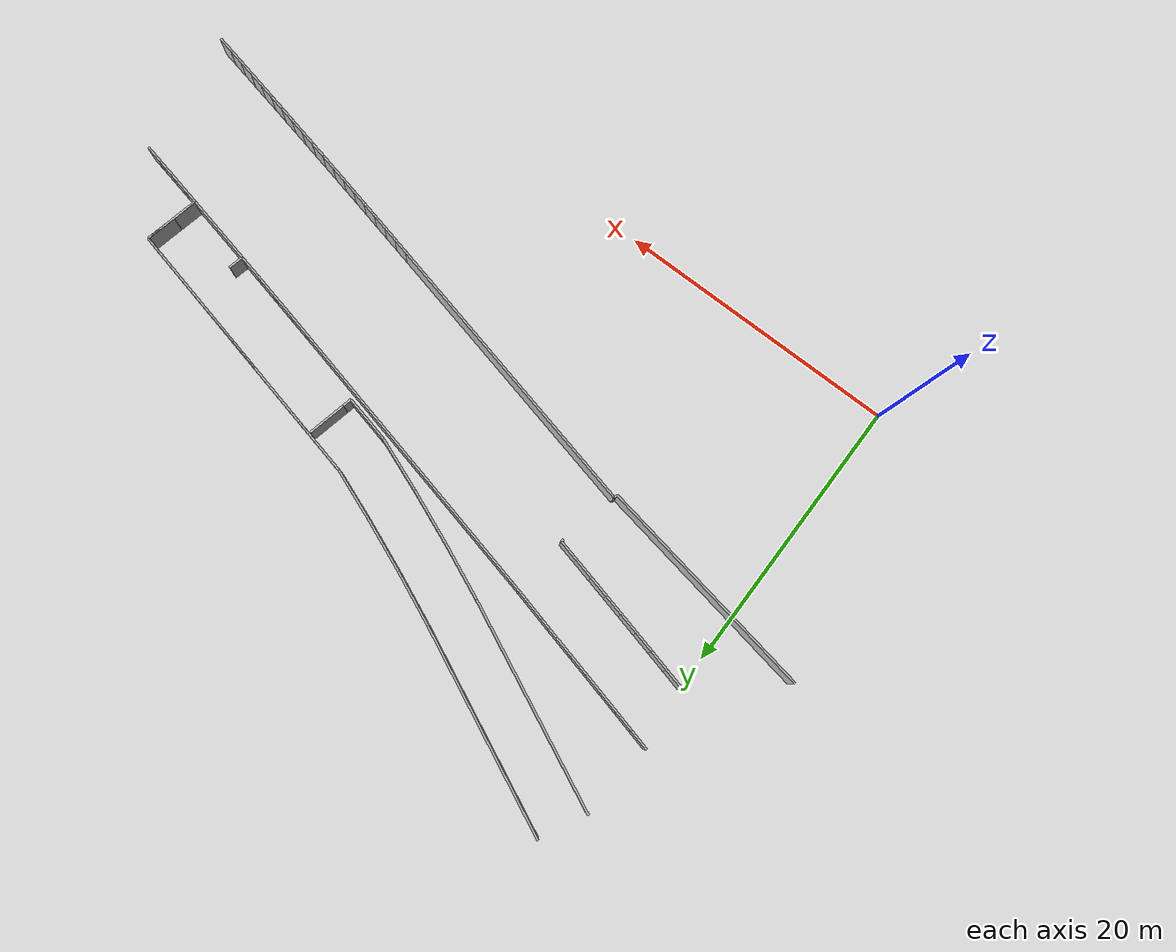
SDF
<?xml version="1.0" ?>
<sdf version="1.6">
  <model name="sps_1804">
    <pose frame="">0 0 0 0 -0 0</pose>
    <static>1</static>
    <self_collide>0</self_collide>
    <allow_auto_disable>0</allow_auto_disable>
    <link name="Wall28">
      <kinematic>0</kinematic>
      <gravity>1</gravity>
      <self_collide>0</self_collide>
      <collision name="collision">
        <geometry>
          <box>
            <size>15.0816 0.15 2.5</size>
          </box>
        </geometry>
        <pose frame="">0 0 0 0 -0 0</pose>
      </collision>
      <visual name="visual">
        <geometry>
          <box>
            <size>15.0816 0.15 2.5</size>
          </box>
        </geometry>
        <pose frame="">0 0 0 0 -0 0</pose>
        <cast_shadows>1</cast_shadows>
        <transparency>0.0</transparency>
      </visual>
      <pose frame="">7.05285 29.0338 1.25 0 -0 2.70048</pose>
    </link>
    <link name="Wall29">
      <kinematic>0</kinematic>
      <gravity>1</gravity>
      <self_collide>0</self_collide>
      <collision name="collision">
        <geometry>
          <box>
            <size>4.01389 0.15 2.5</size>
          </box>
        </geometry>
        <pose frame="">0 0 0 0 -0 0</pose>
      </collision>
      <visual name="visual">
        <geometry>
          <box>
            <size>4.01389 0.15 2.5</size>
          </box>
        </geometry>
        <pose frame="">0 0 0 0 -0 0</pose>
        <cast_shadows>1</cast_shadows>
        <transparency>0.0</transparency>
      </visual>
      <pose frame="">19.4061 23.41 1.25 0 -0 2.74713</pose>
    </link>
    <link name="Wall31">
      <kinematic>0</kinematic>
      <gravity>1</gravity>
      <self_collide>0</self_collide>
      <collision name="collision">
        <geometry>
          <box>
            <size>21.1297 0.15 2.5</size>
          </box>
        </geometry>
        <pose frame="">0 0 0 0 -0 0</pose>
      </collision>
      <visual name="visual">
        <geometry>
          <box>
            <size>21.1297 0.15 2.5</size>
          </box>
        </geometry>
        <pose frame="">0 0 0 0 -0 0</pose>
        <cast_shadows>1</cast_shadows>
        <transparency>0.0</transparency>
      </visual>
      <pose frame="">23.0045 21.1647 1.25 0 0 -0.231213</pose>
    </link>
    <link name="Wall118">
      <kinematic>0</kinematic>
      <gravity>1</gravity>
      <self_collide>0</self_collide>
      <collision name="collision">
        <geometry>
          <box>
            <size>16.258 0.15 2.5</size>
          </box>
        </geometry>
        <pose frame="">0 0 0 0 -0 0</pose>
      </collision>
      <visual name="visual">
        <geometry>
          <box>
            <size>16.258 0.15 2.5</size>
          </box>
        </geometry>
        <pose frame="">0 0 0 0 -0 0</pose>
        <cast_shadows>1</cast_shadows>
        <transparency>0.0</transparency>
      </visual>
      <pose frame="">2.6691 16.4683 1.25 0 0 -0.176184</pose>
    </link>
    <link name="Wall196">
      <kinematic>0</kinematic>
      <gravity>1</gravity>
      <self_collide>0</self_collide>
      <collision name="collision">
        <geometry>
          <box>
            <size>3.94369 0.15 2.5</size>
          </box>
        </geometry>
        <pose frame="">0 0 0 0 -0 0</pose>
      </collision>
      <visual name="visual">
        <geometry>
          <box>
            <size>3.94369 0.15 2.5</size>
          </box>
        </geometry>
        <pose frame="">0 0 0 0 -0 0</pose>
        <cast_shadows>1</cast_shadows>
        <transparency>0.0</transparency>
      </visual>
      <pose frame="">17.1317 28.1964 1.25 0 0 -0.417479</pose>
    </link>
    <link name="Wall197">
      <kinematic>0</kinematic>
      <gravity>1</gravity>
      <self_collide>0</self_collide>
      <collision name="collision">
        <geometry>
          <box>
            <size>21.1844 0.15 2.5</size>
          </box>
        </geometry>
        <pose frame="">0 0 0 0 -0 0</pose>
      </collision>
      <visual name="visual">
        <geometry>
          <box>
            <size>21.1844 0.15 2.5</size>
          </box>
        </geometry>
        <pose frame="">0 0 0 0 -0 0</pose>
        <cast_shadows>1</cast_shadows>
        <transparency>0.0</transparency>
      </visual>
      <pose frame="">21.0443 12.8755 1.25 0 0 -0.229613</pose>
    </link>
    <link name="Wall287">
      <kinematic>0</kinematic>
      <gravity>1</gravity>
      <self_collide>0</self_collide>
      <collision name="collision">
        <geometry>
          <box>
            <size>3.93435 0.15 2.5</size>
          </box>
        </geometry>
        <pose frame="">0 0 0 0 -0 0</pose>
      </collision>
      <visual name="visual">
        <geometry>
          <box>
            <size>3.93435 0.15 2.5</size>
          </box>
        </geometry>
        <pose frame="">0 0 0 0 -0 0</pose>
        <cast_shadows>1</cast_shadows>
        <transparency>0.0</transparency>
      </visual>
      <pose frame="">20.7505 26.6414 1.25 0 0 -0.394179</pose>
    </link>
    <link name="Wall290">
      <kinematic>0</kinematic>
      <gravity>1</gravity>
      <self_collide>0</self_collide>
      <collision name="collision">
        <geometry>
          <box>
            <size>5.6374 0.15 2.5</size>
          </box>
        </geometry>
        <pose frame="">0 0 0 0 -0 0</pose>
      </collision>
      <visual name="visual">
        <geometry>
          <box>
            <size>5.6374 0.15 2.5</size>
          </box>
        </geometry>
        <pose frame="">0 0 0 0 -0 0</pose>
        <cast_shadows>1</cast_shadows>
        <transparency>0.0</transparency>
      </visual>
      <pose frame="">31.7244 23.2149 1.25 0 0 -0.229042</pose>
    </link>
    <link name="Wall291">
      <kinematic>0</kinematic>
      <gravity>1</gravity>
      <self_collide>0</self_collide>
      <collision name="collision">
        <geometry>
          <box>
            <size>11.3628 0.15 2.5</size>
          </box>
        </geometry>
        <pose frame="">0 0 0 0 -0 0</pose>
      </collision>
      <visual name="visual">
        <geometry>
          <box>
            <size>11.3628 0.15 2.5</size>
          </box>
        </geometry>
        <pose frame="">0 0 0 0 -0 0</pose>
        <cast_shadows>1</cast_shadows>
        <transparency>0.0</transparency>
      </visual>
      <pose frame="">40.0025 21.285 1.25 0 0 -0.229042</pose>
    </link>
    <link name="Wall354">
      <kinematic>0</kinematic>
      <gravity>1</gravity>
      <self_collide>0</self_collide>
      <collision name="collision">
        <geometry>
          <box>
            <size>4.02733 0.15 2.5</size>
          </box>
        </geometry>
        <pose frame="">0 0 0 0 -0 0</pose>
      </collision>
      <visual name="visual">
        <geometry>
          <box>
            <size>4.02733 0.15 2.5</size>
          </box>
        </geometry>
        <pose frame="">0 0 0 0 -0 0</pose>
        <cast_shadows>1</cast_shadows>
        <transparency>0.0</transparency>
      </visual>
      <pose frame="">15.7125 24.9978 1.25 0 -0 2.72409</pose>
    </link>
    <link name="Wall355">
      <kinematic>0</kinematic>
      <gravity>1</gravity>
      <self_collide>0</self_collide>
      <collision name="collision">
        <geometry>
          <box>
            <size>3.95796 0.15 2.5</size>
          </box>
        </geometry>
        <pose frame="">0 0 0 0 -0 0</pose>
      </collision>
      <visual name="visual">
        <geometry>
          <box>
            <size>3.95796 0.15 2.5</size>
          </box>
        </geometry>
        <pose frame="">0 0 0 0 -0 0</pose>
        <cast_shadows>1</cast_shadows>
        <transparency>0.0</transparency>
      </visual>
      <pose frame="">23.1028 21.9201 1.25 0 -0 2.76998</pose>
    </link>
    <link name="Wall357">
      <kinematic>0</kinematic>
      <gravity>1</gravity>
      <self_collide>0</self_collide>
      <collision name="collision">
        <geometry>
          <box>
            <size>3.07591 0.15 2.5</size>
          </box>
        </geometry>
        <pose frame="">0 0 0 0 -0 0</pose>
      </collision>
      <visual name="visual">
        <geometry>
          <box>
            <size>3.07591 0.15 2.5</size>
          </box>
        </geometry>
        <pose frame="">0 0 0 0 -0 0</pose>
        <cast_shadows>1</cast_shadows>
        <transparency>0.0</transparency>
      </visual>
      <pose frame="">27.4815 24.204 1.25 0 0 -0.229</pose>
    </link>
    <link name="Wall435">
      <kinematic>0</kinematic>
      <gravity>1</gravity>
      <self_collide>0</self_collide>
      <collision name="collision">
        <geometry>
          <box>
            <size>0.179735 0.15 2.5</size>
          </box>
        </geometry>
        <pose frame="">0 0 0 0 -0 0</pose>
      </collision>
      <visual name="visual">
        <geometry>
          <box>
            <size>0.179735 0.15 2.5</size>
          </box>
        </geometry>
        <pose frame="">0 0 0 0 -0 0</pose>
        <cast_shadows>1</cast_shadows>
        <transparency>0.0</transparency>
      </visual>
      <pose frame="">11.743 19.5065 1.25 0 -0 1.33603</pose>
    </link>
    <link name="Wall532">
      <kinematic>0</kinematic>
      <gravity>1</gravity>
      <self_collide>0</self_collide>
      <collision name="collision">
        <geometry>
          <box>
            <size>0.249583 0.15 2.5</size>
          </box>
        </geometry>
        <pose frame="">0 0 0 0 -0 0</pose>
      </collision>
      <visual name="visual">
        <geometry>
          <box>
            <size>0.249583 0.15 2.5</size>
          </box>
        </geometry>
        <pose frame="">0 0 0 0 -0 0</pose>
        <cast_shadows>1</cast_shadows>
        <transparency>0.0</transparency>
      </visual>
      <pose frame="">10.7012 15.1649 1.25 0 -0 1.33709</pose>
    </link>
    <link name="Wall533">
      <kinematic>0</kinematic>
      <gravity>1</gravity>
      <self_collide>0</self_collide>
      <collision name="collision">
        <geometry>
          <box>
            <size>14.9395 0.15 2.5</size>
          </box>
        </geometry>
        <pose frame="">0 0 0 0 -0 0</pose>
      </collision>
      <visual name="visual">
        <geometry>
          <box>
            <size>14.9395 0.15 2.5</size>
          </box>
        </geometry>
        <pose frame="">0 0 0 0 -0 0</pose>
        <cast_shadows>1</cast_shadows>
        <transparency>0.0</transparency>
      </visual>
      <pose frame="">8.57455 32.1851 1.25 0 0 -0.441118</pose>
    </link>
    <link name="Wall534">
      <kinematic>0</kinematic>
      <gravity>1</gravity>
      <self_collide>0</self_collide>
      <collision name="collision">
        <geometry>
          <box>
            <size>3.66754 0.15 2.5</size>
          </box>
        </geometry>
        <pose frame="">0 0 0 0 -0 0</pose>
      </collision>
      <visual name="visual">
        <geometry>
          <box>
            <size>3.66754 0.15 2.5</size>
          </box>
        </geometry>
        <pose frame="">0 0 0 0 -0 0</pose>
        <cast_shadows>1</cast_shadows>
        <transparency>0.0</transparency>
      </visual>
      <pose frame="">24.2753 25.2195 1.25 0 0 -0.371909</pose>
    </link>
    <link name="Wall535">
      <kinematic>0</kinematic>
      <gravity>1</gravity>
      <self_collide>0</self_collide>
      <collision name="collision">
        <geometry>
          <box>
            <size>3.32587 0.15 2.5</size>
          </box>
        </geometry>
        <pose frame="">0 0 0 0 -0 0</pose>
      </collision>
      <visual name="visual">
        <geometry>
          <box>
            <size>3.32587 0.15 2.5</size>
          </box>
        </geometry>
        <pose frame="">0 0 0 0 -0 0</pose>
        <cast_shadows>1</cast_shadows>
        <transparency>0.0</transparency>
      </visual>
      <pose frame="">26.5662 20.8238 1.25 0 -0 2.91247</pose>
    </link>
    <link name="Wall536">
      <kinematic>0</kinematic>
      <gravity>1</gravity>
      <self_collide>0</self_collide>
      <collision name="collision">
        <geometry>
          <box>
            <size>0.61782 0.15 2.5</size>
          </box>
        </geometry>
        <pose frame="">0 0 0 0 -0 0</pose>
      </collision>
      <visual name="visual">
        <geometry>
          <box>
            <size>0.61782 0.15 2.5</size>
          </box>
        </geometry>
        <pose frame="">0 0 0 0 -0 0</pose>
        <cast_shadows>1</cast_shadows>
        <transparency>0.0</transparency>
      </visual>
      <pose frame="">28.2556 20.747 1.25 0 0 -1.79941</pose>
    </link>
    <link name="Wall537">
      <kinematic>0</kinematic>
      <gravity>1</gravity>
      <self_collide>0</self_collide>
      <collision name="collision">
        <geometry>
          <box>
            <size>2.15842 0.15 2.5</size>
          </box>
        </geometry>
        <pose frame="">0 0 0 0 -0 0</pose>
      </collision>
      <visual name="visual">
        <geometry>
          <box>
            <size>2.15842 0.15 2.5</size>
          </box>
        </geometry>
        <pose frame="">0 0 0 0 -0 0</pose>
        <cast_shadows>1</cast_shadows>
        <transparency>0.0</transparency>
      </visual>
      <pose frame="">45.2903 18.9441 1.25 0 0 -1.79996</pose>
    </link>
    <link name="Wall538">
      <kinematic>0</kinematic>
      <gravity>1</gravity>
      <self_collide>0</self_collide>
      <collision name="collision">
        <geometry>
          <box>
            <size>1.77993 0.15 2.5</size>
          </box>
        </geometry>
        <pose frame="">0 0 0 0 -0 0</pose>
      </collision>
      <visual name="visual">
        <geometry>
          <box>
            <size>1.77993 0.15 2.5</size>
          </box>
        </geometry>
        <pose frame="">0 0 0 0 -0 0</pose>
        <cast_shadows>1</cast_shadows>
        <transparency>0.0</transparency>
      </visual>
      <pose frame="">44.843 17.0264 1.25 0 0 -1.79996</pose>
    </link>
    <link name="Wall987">
      <kinematic>0</kinematic>
      <gravity>1</gravity>
      <self_collide>0</self_collide>
      <collision name="collision">
        <geometry>
          <box>
            <size>0.249583 0.15 2.5</size>
          </box>
        </geometry>
        <pose frame="">0 0 0 0 -0 0</pose>
      </collision>
      <visual name="visual">
        <geometry>
          <box>
            <size>0.249583 0.15 2.5</size>
          </box>
        </geometry>
        <pose frame="">0 0 0 0 -0 0</pose>
        <cast_shadows>1</cast_shadows>
        <transparency>0.0</transparency>
      </visual>
      <pose frame="">10.7012 15.1649 1.25 0 0 -1.80451</pose>
    </link>
    <link name="Wall999">
      <kinematic>0</kinematic>
      <gravity>1</gravity>
      <self_collide>0</self_collide>
      <collision name="collision">
        <geometry>
          <box>
            <size>2.8821 0.15 2.5</size>
          </box>
        </geometry>
        <pose frame="">0 0 0 0 -0 0</pose>
      </collision>
      <visual name="visual">
        <geometry>
          <box>
            <size>2.8821 0.15 2.5</size>
          </box>
        </geometry>
        <pose frame="">0 0 0 0 -0 0</pose>
        <cast_shadows>1</cast_shadows>
        <transparency>0.0</transparency>
      </visual>
      <pose frame="">28.6525 22.4514 1.25 0 -0 1.34202</pose>
    </link>
    <link name="Wall1000">
      <kinematic>0</kinematic>
      <gravity>1</gravity>
      <self_collide>0</self_collide>
      <collision name="collision">
        <geometry>
          <box>
            <size>17.0002 0.15 2.5</size>
          </box>
        </geometry>
        <pose frame="">0 0 0 0 -0 0</pose>
      </collision>
      <visual name="visual">
        <geometry>
          <box>
            <size>17.0002 0.15 2.5</size>
          </box>
        </geometry>
        <pose frame="">0 0 0 0 -0 0</pose>
        <cast_shadows>1</cast_shadows>
        <transparency>0.0</transparency>
      </visual>
      <pose frame="">37.2574 21.925 1.25 0 0 -0.229042</pose>
    </link>
    <link name="Wall1001">
      <kinematic>0</kinematic>
      <gravity>1</gravity>
      <self_collide>0</self_collide>
      <collision name="collision">
        <geometry>
          <box>
            <size>3.93835 0.15 2.5</size>
          </box>
        </geometry>
        <pose frame="">0 0 0 0 -0 0</pose>
      </collision>
      <visual name="visual">
        <geometry>
          <box>
            <size>3.93835 0.15 2.5</size>
          </box>
        </geometry>
        <pose frame="">0 0 0 0 -0 0</pose>
        <cast_shadows>1</cast_shadows>
        <transparency>0.0</transparency>
      </visual>
      <pose frame="">45.0882 18.0774 1.25 0 0 -1.79996</pose>
    </link>
    <link name="Wall1002">
      <kinematic>0</kinematic>
      <gravity>1</gravity>
      <self_collide>0</self_collide>
      <collision name="collision">
        <geometry>
          <box>
            <size>4.99972 0.15 2.5</size>
          </box>
        </geometry>
        <pose frame="">0 0 0 0 -0 0</pose>
      </collision>
      <visual name="visual">
        <geometry>
          <box>
            <size>4.99972 0.15 2.5</size>
          </box>
        </geometry>
        <pose frame="">0 0 0 0 -0 0</pose>
        <cast_shadows>1</cast_shadows>
        <transparency>0.0</transparency>
      </visual>
      <pose frame="">42.2015 16.7066 1.25 0 -0 2.92103</pose>
    </link>
    <link name="Wall1003">
      <kinematic>0</kinematic>
      <gravity>1</gravity>
      <self_collide>0</self_collide>
      <collision name="collision">
        <geometry>
          <box>
            <size>1.08065 0.15 2.5</size>
          </box>
        </geometry>
        <pose frame="">0 0 0 0 -0 0</pose>
      </collision>
      <visual name="visual">
        <geometry>
          <box>
            <size>1.08065 0.15 2.5</size>
          </box>
        </geometry>
        <pose frame="">0 0 0 0 -0 0</pose>
        <cast_shadows>1</cast_shadows>
        <transparency>0.0</transparency>
      </visual>
      <pose frame="">39.8854 17.7796 1.25 0 -0 1.34076</pose>
    </link>
    <link name="Wall2697">
      <kinematic>0</kinematic>
      <gravity>1</gravity>
      <self_collide>0</self_collide>
      <collision name="collision">
        <geometry>
          <box>
            <size>1.08602 0.15 2.5</size>
          </box>
        </geometry>
        <pose frame="">0 0 0 0 -0 0</pose>
      </collision>
      <visual name="visual">
        <geometry>
          <box>
            <size>1.08602 0.15 2.5</size>
          </box>
        </geometry>
        <pose frame="">0 0 0 0 -0 0</pose>
        <cast_shadows>1</cast_shadows>
        <transparency>0.0</transparency>
      </visual>
      <pose frame="">31.8873 10.3412 1.25 0 0 -0.229453</pose>
    </link>
    <link name="Wall2698">
      <kinematic>0</kinematic>
      <gravity>1</gravity>
      <self_collide>0</self_collide>
      <collision name="collision">
        <geometry>
          <box>
            <size>1.08593 0.15 2.5</size>
          </box>
        </geometry>
        <pose frame="">0 0 0 0 -0 0</pose>
      </collision>
      <visual name="visual">
        <geometry>
          <box>
            <size>1.08593 0.15 2.5</size>
          </box>
        </geometry>
        <pose frame="">0 0 0 0 -0 0</pose>
        <cast_shadows>1</cast_shadows>
        <transparency>0.0</transparency>
      </visual>
      <pose frame="">32.9449 10.0949 1.25 0 0 -0.228088</pose>
    </link>
    <link name="Wall2699">
      <kinematic>0</kinematic>
      <gravity>1</gravity>
      <self_collide>0</self_collide>
      <collision name="collision">
        <geometry>
          <box>
            <size>1.08609 0.15 2.5</size>
          </box>
        </geometry>
        <pose frame="">0 0 0 0 -0 0</pose>
      </collision>
      <visual name="visual">
        <geometry>
          <box>
            <size>1.08609 0.15 2.5</size>
          </box>
        </geometry>
        <pose frame="">0 0 0 0 -0 0</pose>
        <cast_shadows>1</cast_shadows>
        <transparency>0.0</transparency>
      </visual>
      <pose frame="">34.003 9.8499 1.25 0 0 -0.227014</pose>
    </link>
    <link name="Wall2700">
      <kinematic>0</kinematic>
      <gravity>1</gravity>
      <self_collide>0</self_collide>
      <collision name="collision">
        <geometry>
          <box>
            <size>1.08604 0.15 2.5</size>
          </box>
        </geometry>
        <pose frame="">0 0 0 0 -0 0</pose>
      </collision>
      <visual name="visual">
        <geometry>
          <box>
            <size>1.08604 0.15 2.5</size>
          </box>
        </geometry>
        <pose frame="">0 0 0 0 -0 0</pose>
        <cast_shadows>1</cast_shadows>
        <transparency>0.0</transparency>
      </visual>
      <pose frame="">35.0613 9.60597 1.25 0 0 -0.226045</pose>
    </link>
    <link name="Wall2701">
      <kinematic>0</kinematic>
      <gravity>1</gravity>
      <self_collide>0</self_collide>
      <collision name="collision">
        <geometry>
          <box>
            <size>1.08608 0.15 2.5</size>
          </box>
        </geometry>
        <pose frame="">0 0 0 0 -0 0</pose>
      </collision>
      <visual name="visual">
        <geometry>
          <box>
            <size>1.08608 0.15 2.5</size>
          </box>
        </geometry>
        <pose frame="">0 0 0 0 -0 0</pose>
        <cast_shadows>1</cast_shadows>
        <transparency>0.0</transparency>
      </visual>
      <pose frame="">36.1199 9.36326 1.25 0 0 -0.22471</pose>
    </link>
    <link name="Wall2702">
      <kinematic>0</kinematic>
      <gravity>1</gravity>
      <self_collide>0</self_collide>
      <collision name="collision">
        <geometry>
          <box>
            <size>1.08605 0.15 2.5</size>
          </box>
        </geometry>
        <pose frame="">0 0 0 0 -0 0</pose>
      </collision>
      <visual name="visual">
        <geometry>
          <box>
            <size>1.08605 0.15 2.5</size>
          </box>
        </geometry>
        <pose frame="">0 0 0 0 -0 0</pose>
        <cast_shadows>1</cast_shadows>
        <transparency>0.0</transparency>
      </visual>
      <pose frame="">37.1788 9.12187 1.25 0 0 -0.223564</pose>
    </link>
    <link name="Wall2703">
      <kinematic>0</kinematic>
      <gravity>1</gravity>
      <self_collide>0</self_collide>
      <collision name="collision">
        <geometry>
          <box>
            <size>1.08596 0.15 2.5</size>
          </box>
        </geometry>
        <pose frame="">0 0 0 0 -0 0</pose>
      </collision>
      <visual name="visual">
        <geometry>
          <box>
            <size>1.08596 0.15 2.5</size>
          </box>
        </geometry>
        <pose frame="">0 0 0 0 -0 0</pose>
        <cast_shadows>1</cast_shadows>
        <transparency>0.0</transparency>
      </visual>
      <pose frame="">38.2379 8.8817 1.25 0 0 -0.22243</pose>
    </link>
    <link name="Wall2704">
      <kinematic>0</kinematic>
      <gravity>1</gravity>
      <self_collide>0</self_collide>
      <collision name="collision">
        <geometry>
          <box>
            <size>1.08606 0.15 2.5</size>
          </box>
        </geometry>
        <pose frame="">0 0 0 0 -0 0</pose>
      </collision>
      <visual name="visual">
        <geometry>
          <box>
            <size>1.08606 0.15 2.5</size>
          </box>
        </geometry>
        <pose frame="">0 0 0 0 -0 0</pose>
        <cast_shadows>1</cast_shadows>
        <transparency>0.0</transparency>
      </visual>
      <pose frame="">39.2973 8.64271 1.25 0 0 -0.221314</pose>
    </link>
    <link name="Wall2705">
      <kinematic>0</kinematic>
      <gravity>1</gravity>
      <self_collide>0</self_collide>
      <collision name="collision">
        <geometry>
          <box>
            <size>1.08604 0.15 2.5</size>
          </box>
        </geometry>
        <pose frame="">0 0 0 0 -0 0</pose>
      </collision>
      <visual name="visual">
        <geometry>
          <box>
            <size>1.08604 0.15 2.5</size>
          </box>
        </geometry>
        <pose frame="">0 0 0 0 -0 0</pose>
        <cast_shadows>1</cast_shadows>
        <transparency>0.0</transparency>
      </visual>
      <pose frame="">40.357 8.40489 1.25 0 0 -0.220223</pose>
    </link>
    <link name="Wall2706">
      <kinematic>0</kinematic>
      <gravity>1</gravity>
      <self_collide>0</self_collide>
      <collision name="collision">
        <geometry>
          <box>
            <size>1.08594 0.15 2.5</size>
          </box>
        </geometry>
        <pose frame="">0 0 0 0 -0 0</pose>
      </collision>
      <visual name="visual">
        <geometry>
          <box>
            <size>1.08594 0.15 2.5</size>
          </box>
        </geometry>
        <pose frame="">0 0 0 0 -0 0</pose>
        <cast_shadows>1</cast_shadows>
        <transparency>0.0</transparency>
      </visual>
      <pose frame="">41.4169 8.16829 1.25 0 0 -0.219035</pose>
    </link>
    <link name="Wall2707">
      <kinematic>0</kinematic>
      <gravity>1</gravity>
      <self_collide>0</self_collide>
      <collision name="collision">
        <geometry>
          <box>
            <size>1.08587 0.15 2.5</size>
          </box>
        </geometry>
        <pose frame="">0 0 0 0 -0 0</pose>
      </collision>
      <visual name="visual">
        <geometry>
          <box>
            <size>1.08587 0.15 2.5</size>
          </box>
        </geometry>
        <pose frame="">0 0 0 0 -0 0</pose>
        <cast_shadows>1</cast_shadows>
        <transparency>0.0</transparency>
      </visual>
      <pose frame="">42.477 7.93291 1.25 0 0 -0.217956</pose>
    </link>
    <link name="Wall2708">
      <kinematic>0</kinematic>
      <gravity>1</gravity>
      <self_collide>0</self_collide>
      <collision name="collision">
        <geometry>
          <box>
            <size>1.08622 0.15 2.5</size>
          </box>
        </geometry>
        <pose frame="">0 0 0 0 -0 0</pose>
      </collision>
      <visual name="visual">
        <geometry>
          <box>
            <size>1.08622 0.15 2.5</size>
          </box>
        </geometry>
        <pose frame="">0 0 0 0 -0 0</pose>
        <cast_shadows>1</cast_shadows>
        <transparency>0.0</transparency>
      </visual>
      <pose frame="">43.5374 7.69868 1.25 0 0 -0.216792</pose>
    </link>
    <link name="Wall2709">
      <kinematic>0</kinematic>
      <gravity>1</gravity>
      <self_collide>0</self_collide>
      <collision name="collision">
        <geometry>
          <box>
            <size>1.086 0.15 2.5</size>
          </box>
        </geometry>
        <pose frame="">0 0 0 0 -0 0</pose>
      </collision>
      <visual name="visual">
        <geometry>
          <box>
            <size>1.086 0.15 2.5</size>
          </box>
        </geometry>
        <pose frame="">0 0 0 0 -0 0</pose>
        <cast_shadows>1</cast_shadows>
        <transparency>0.0</transparency>
      </visual>
      <pose frame="">44.5983 7.46568 1.25 0 0 -0.215627</pose>
    </link>
    <link name="Wall2710">
      <kinematic>0</kinematic>
      <gravity>1</gravity>
      <self_collide>0</self_collide>
      <collision name="collision">
        <geometry>
          <box>
            <size>1.08601 0.15 2.5</size>
          </box>
        </geometry>
        <pose frame="">0 0 0 0 -0 0</pose>
      </collision>
      <visual name="visual">
        <geometry>
          <box>
            <size>1.08601 0.15 2.5</size>
          </box>
        </geometry>
        <pose frame="">0 0 0 0 -0 0</pose>
        <cast_shadows>1</cast_shadows>
        <transparency>0.0</transparency>
      </visual>
      <pose frame="">45.6593 7.23399 1.25 0 0 -0.214359</pose>
    </link>
    <link name="Wall2711">
      <kinematic>0</kinematic>
      <gravity>1</gravity>
      <self_collide>0</self_collide>
      <collision name="collision">
        <geometry>
          <box>
            <size>1.08603 0.15 2.5</size>
          </box>
        </geometry>
        <pose frame="">0 0 0 0 -0 0</pose>
      </collision>
      <visual name="visual">
        <geometry>
          <box>
            <size>1.08603 0.15 2.5</size>
          </box>
        </geometry>
        <pose frame="">0 0 0 0 -0 0</pose>
        <cast_shadows>1</cast_shadows>
        <transparency>0.0</transparency>
      </visual>
      <pose frame="">46.7205 7.00349 1.25 0 0 -0.213378</pose>
    </link>
    <link name="Wall2712">
      <kinematic>0</kinematic>
      <gravity>1</gravity>
      <self_collide>0</self_collide>
      <collision name="collision">
        <geometry>
          <box>
            <size>1.0862 0.15 2.5</size>
          </box>
        </geometry>
        <pose frame="">0 0 0 0 -0 0</pose>
      </collision>
      <visual name="visual">
        <geometry>
          <box>
            <size>1.0862 0.15 2.5</size>
          </box>
        </geometry>
        <pose frame="">0 0 0 0 -0 0</pose>
        <cast_shadows>1</cast_shadows>
        <transparency>0.0</transparency>
      </visual>
      <pose frame="">47.7822 6.77409 1.25 0 0 -0.212251</pose>
    </link>
    <link name="Wall2713">
      <kinematic>0</kinematic>
      <gravity>1</gravity>
      <self_collide>0</self_collide>
      <collision name="collision">
        <geometry>
          <box>
            <size>1.08585 0.15 2.5</size>
          </box>
        </geometry>
        <pose frame="">0 0 0 0 -0 0</pose>
      </collision>
      <visual name="visual">
        <geometry>
          <box>
            <size>1.08585 0.15 2.5</size>
          </box>
        </geometry>
        <pose frame="">0 0 0 0 -0 0</pose>
        <cast_shadows>1</cast_shadows>
        <transparency>0.0</transparency>
      </visual>
      <pose frame="">48.844 6.54597 1.25 0 0 -0.210999</pose>
    </link>
    <link name="Wall2714">
      <kinematic>0</kinematic>
      <gravity>1</gravity>
      <self_collide>0</self_collide>
      <collision name="collision">
        <geometry>
          <box>
            <size>1.08605 0.15 2.5</size>
          </box>
        </geometry>
        <pose frame="">0 0 0 0 -0 0</pose>
      </collision>
      <visual name="visual">
        <geometry>
          <box>
            <size>1.08605 0.15 2.5</size>
          </box>
        </geometry>
        <pose frame="">0 0 0 0 -0 0</pose>
        <cast_shadows>1</cast_shadows>
        <transparency>0.0</transparency>
      </visual>
      <pose frame="">49.9059 6.31908 1.25 0 0 -0.209983</pose>
    </link>
    <link name="Wall8176">
      <kinematic>0</kinematic>
      <gravity>1</gravity>
      <self_collide>0</self_collide>
      <collision name="collision">
        <geometry>
          <box>
            <size>1.6606 0.15 2.5</size>
          </box>
        </geometry>
        <pose frame="">0 0 0 0 -0 0</pose>
      </collision>
      <visual name="visual">
        <geometry>
          <box>
            <size>1.6606 0.15 2.5</size>
          </box>
        </geometry>
        <pose frame="">0 0 0 0 -0 0</pose>
        <cast_shadows>1</cast_shadows>
        <transparency>0.0</transparency>
      </visual>
      <pose frame="">34.0969 18.5556 1.25 0 0 -0.228504</pose>
    </link>
    <link name="Wall8177">
      <kinematic>0</kinematic>
      <gravity>1</gravity>
      <self_collide>0</self_collide>
      <collision name="collision">
        <geometry>
          <box>
            <size>1.66107 0.15 2.5</size>
          </box>
        </geometry>
        <pose frame="">0 0 0 0 -0 0</pose>
      </collision>
      <visual name="visual">
        <geometry>
          <box>
            <size>1.66107 0.15 2.5</size>
          </box>
        </geometry>
        <pose frame="">0 0 0 0 -0 0</pose>
        <cast_shadows>1</cast_shadows>
        <transparency>0.0</transparency>
      </visual>
      <pose frame="">35.7149 18.1805 1.25 0 0 -0.227118</pose>
    </link>
    <link name="Wall8178">
      <kinematic>0</kinematic>
      <gravity>1</gravity>
      <self_collide>0</self_collide>
      <collision name="collision">
        <geometry>
          <box>
            <size>1.6607 0.15 2.5</size>
          </box>
        </geometry>
        <pose frame="">0 0 0 0 -0 0</pose>
      </collision>
      <visual name="visual">
        <geometry>
          <box>
            <size>1.6607 0.15 2.5</size>
          </box>
        </geometry>
        <pose frame="">0 0 0 0 -0 0</pose>
        <cast_shadows>1</cast_shadows>
        <transparency>0.0</transparency>
      </visual>
      <pose frame="">37.3334 17.8077 1.25 0 0 -0.225661</pose>
    </link>
    <link name="Wall8179">
      <kinematic>0</kinematic>
      <gravity>1</gravity>
      <self_collide>0</self_collide>
      <collision name="collision">
        <geometry>
          <box>
            <size>1.66094 0.15 2.5</size>
          </box>
        </geometry>
        <pose frame="">0 0 0 0 -0 0</pose>
      </collision>
      <visual name="visual">
        <geometry>
          <box>
            <size>1.66094 0.15 2.5</size>
          </box>
        </geometry>
        <pose frame="">0 0 0 0 -0 0</pose>
        <cast_shadows>1</cast_shadows>
        <transparency>0.0</transparency>
      </visual>
      <pose frame="">38.9524 17.4377 1.25 0 0 -0.223667</pose>
    </link>
    <link name="Wall8853">
      <kinematic>0</kinematic>
      <gravity>1</gravity>
      <self_collide>0</self_collide>
      <collision name="collision">
        <geometry>
          <box>
            <size>1.49901 0.15 2.5</size>
          </box>
        </geometry>
        <pose frame="">0 0 0 0 -0 0</pose>
      </collision>
      <visual name="visual">
        <geometry>
          <box>
            <size>1.49901 0.15 2.5</size>
          </box>
        </geometry>
        <pose frame="">0 0 0 0 -0 0</pose>
        <cast_shadows>1</cast_shadows>
        <transparency>0.0</transparency>
      </visual>
      <pose frame="">0.847343 22.2797 1.25 0 0 -0.24722</pose>
    </link>
    <link name="Wall8854">
      <kinematic>0</kinematic>
      <gravity>1</gravity>
      <self_collide>0</self_collide>
      <collision name="collision">
        <geometry>
          <box>
            <size>1.49894 0.15 2.5</size>
          </box>
        </geometry>
        <pose frame="">0 0 0 0 -0 0</pose>
      </collision>
      <visual name="visual">
        <geometry>
          <box>
            <size>1.49894 0.15 2.5</size>
          </box>
        </geometry>
        <pose frame="">0 0 0 0 -0 0</pose>
        <cast_shadows>1</cast_shadows>
        <transparency>0.0</transparency>
      </visual>
      <pose frame="">2.30105 21.9141 1.25 0 0 -0.245551</pose>
    </link>
    <link name="Wall8855">
      <kinematic>0</kinematic>
      <gravity>1</gravity>
      <self_collide>0</self_collide>
      <collision name="collision">
        <geometry>
          <box>
            <size>1.49896 0.15 2.5</size>
          </box>
        </geometry>
        <pose frame="">0 0 0 0 -0 0</pose>
      </collision>
      <visual name="visual">
        <geometry>
          <box>
            <size>1.49896 0.15 2.5</size>
          </box>
        </geometry>
        <pose frame="">0 0 0 0 -0 0</pose>
        <cast_shadows>1</cast_shadows>
        <transparency>0.0</transparency>
      </visual>
      <pose frame="">3.75533 21.5509 1.25 0 0 -0.243912</pose>
    </link>
    <link name="Wall8856">
      <kinematic>0</kinematic>
      <gravity>1</gravity>
      <self_collide>0</self_collide>
      <collision name="collision">
        <geometry>
          <box>
            <size>1.49884 0.15 2.5</size>
          </box>
        </geometry>
        <pose frame="">0 0 0 0 -0 0</pose>
      </collision>
      <visual name="visual">
        <geometry>
          <box>
            <size>1.49884 0.15 2.5</size>
          </box>
        </geometry>
        <pose frame="">0 0 0 0 -0 0</pose>
        <cast_shadows>1</cast_shadows>
        <transparency>0.0</transparency>
      </visual>
      <pose frame="">5.21014 21.19 1.25 0 0 -0.242421</pose>
    </link>
    <link name="Wall8857">
      <kinematic>0</kinematic>
      <gravity>1</gravity>
      <self_collide>0</self_collide>
      <collision name="collision">
        <geometry>
          <box>
            <size>1.49909 0.15 2.5</size>
          </box>
        </geometry>
        <pose frame="">0 0 0 0 -0 0</pose>
      </collision>
      <visual name="visual">
        <geometry>
          <box>
            <size>1.49909 0.15 2.5</size>
          </box>
        </geometry>
        <pose frame="">0 0 0 0 -0 0</pose>
        <cast_shadows>1</cast_shadows>
        <transparency>0.0</transparency>
      </visual>
      <pose frame="">6.66555 20.8313 1.25 0 0 -0.240871</pose>
    </link>
    <link name="Wall8858">
      <kinematic>0</kinematic>
      <gravity>1</gravity>
      <self_collide>0</self_collide>
      <collision name="collision">
        <geometry>
          <box>
            <size>1.49886 0.15 2.5</size>
          </box>
        </geometry>
        <pose frame="">0 0 0 0 -0 0</pose>
      </collision>
      <visual name="visual">
        <geometry>
          <box>
            <size>1.49886 0.15 2.5</size>
          </box>
        </geometry>
        <pose frame="">0 0 0 0 -0 0</pose>
        <cast_shadows>1</cast_shadows>
        <transparency>0.0</transparency>
      </visual>
      <pose frame="">8.12154 20.4749 1.25 0 0 -0.239231</pose>
    </link>
    <link name="Wall8859">
      <kinematic>0</kinematic>
      <gravity>1</gravity>
      <self_collide>0</self_collide>
      <collision name="collision">
        <geometry>
          <box>
            <size>1.49897 0.15 2.5</size>
          </box>
        </geometry>
        <pose frame="">0 0 0 0 -0 0</pose>
      </collision>
      <visual name="visual">
        <geometry>
          <box>
            <size>1.49897 0.15 2.5</size>
          </box>
        </geometry>
        <pose frame="">0 0 0 0 -0 0</pose>
        <cast_shadows>1</cast_shadows>
        <transparency>0.0</transparency>
      </visual>
      <pose frame="">9.57806 20.1209 1.25 0 0 -0.237621</pose>
    </link>
    <link name="Wall8860">
      <kinematic>0</kinematic>
      <gravity>1</gravity>
      <self_collide>0</self_collide>
      <collision name="collision">
        <geometry>
          <box>
            <size>1.49897 0.15 2.5</size>
          </box>
        </geometry>
        <pose frame="">0 0 0 0 -0 0</pose>
      </collision>
      <visual name="visual">
        <geometry>
          <box>
            <size>1.49897 0.15 2.5</size>
          </box>
        </geometry>
        <pose frame="">0 0 0 0 -0 0</pose>
        <cast_shadows>1</cast_shadows>
        <transparency>0.0</transparency>
      </visual>
      <pose frame="">11.0352 19.7692 1.25 0 0 -0.236071</pose>
    </link>
    <link name="Wall9933">
      <kinematic>0</kinematic>
      <gravity>1</gravity>
      <self_collide>0</self_collide>
      <collision name="collision">
        <geometry>
          <box>
            <size>1.49234 0.15 2.5</size>
          </box>
        </geometry>
        <pose frame="">0 0 0 0 -0 0</pose>
      </collision>
      <visual name="visual">
        <geometry>
          <box>
            <size>1.49234 0.15 2.5</size>
          </box>
        </geometry>
        <pose frame="">0 0 0 0 -0 0</pose>
        <cast_shadows>1</cast_shadows>
        <transparency>0.0</transparency>
      </visual>
      <pose frame="">0.413474 26.6604 1.25 0 0 -0.248728</pose>
    </link>
    <link name="Wall9934">
      <kinematic>0</kinematic>
      <gravity>1</gravity>
      <self_collide>0</self_collide>
      <collision name="collision">
        <geometry>
          <box>
            <size>1.49234 0.15 2.5</size>
          </box>
        </geometry>
        <pose frame="">0 0 0 0 -0 0</pose>
      </collision>
      <visual name="visual">
        <geometry>
          <box>
            <size>1.49234 0.15 2.5</size>
          </box>
        </geometry>
        <pose frame="">0 0 0 0 -0 0</pose>
        <cast_shadows>1</cast_shadows>
        <transparency>0.0</transparency>
      </visual>
      <pose frame="">1.86016 26.2941 1.25 0 0 -0.24725</pose>
    </link>
    <link name="Wall9935">
      <kinematic>0</kinematic>
      <gravity>1</gravity>
      <self_collide>0</self_collide>
      <collision name="collision">
        <geometry>
          <box>
            <size>1.4924 0.15 2.5</size>
          </box>
        </geometry>
        <pose frame="">0 0 0 0 -0 0</pose>
      </collision>
      <visual name="visual">
        <geometry>
          <box>
            <size>1.4924 0.15 2.5</size>
          </box>
        </geometry>
        <pose frame="">0 0 0 0 -0 0</pose>
        <cast_shadows>1</cast_shadows>
        <transparency>0.0</transparency>
      </visual>
      <pose frame="">3.30746 25.9301 1.25 0 0 -0.245554</pose>
    </link>
    <link name="Wall9936">
      <kinematic>0</kinematic>
      <gravity>1</gravity>
      <self_collide>0</self_collide>
      <collision name="collision">
        <geometry>
          <box>
            <size>1.49258 0.15 2.5</size>
          </box>
        </geometry>
        <pose frame="">0 0 0 0 -0 0</pose>
      </collision>
      <visual name="visual">
        <geometry>
          <box>
            <size>1.49258 0.15 2.5</size>
          </box>
        </geometry>
        <pose frame="">0 0 0 0 -0 0</pose>
        <cast_shadows>1</cast_shadows>
        <transparency>0.0</transparency>
      </visual>
      <pose frame="">4.75545 25.5684 1.25 0 0 -0.244007</pose>
    </link>
    <link name="Wall9937">
      <kinematic>0</kinematic>
      <gravity>1</gravity>
      <self_collide>0</self_collide>
      <collision name="collision">
        <geometry>
          <box>
            <size>1.4924 0.15 2.5</size>
          </box>
        </geometry>
        <pose frame="">0 0 0 0 -0 0</pose>
      </collision>
      <visual name="visual">
        <geometry>
          <box>
            <size>1.4924 0.15 2.5</size>
          </box>
        </geometry>
        <pose frame="">0 0 0 0 -0 0</pose>
        <cast_shadows>1</cast_shadows>
        <transparency>0.0</transparency>
      </visual>
      <pose frame="">6.20403 25.209 1.25 0 0 -0.24235</pose>
    </link>
    <link name="Wall9938">
      <kinematic>0</kinematic>
      <gravity>1</gravity>
      <self_collide>0</self_collide>
      <collision name="collision">
        <geometry>
          <box>
            <size>1.49244 0.15 2.5</size>
          </box>
        </geometry>
        <pose frame="">0 0 0 0 -0 0</pose>
      </collision>
      <visual name="visual">
        <geometry>
          <box>
            <size>1.49244 0.15 2.5</size>
          </box>
        </geometry>
        <pose frame="">0 0 0 0 -0 0</pose>
        <cast_shadows>1</cast_shadows>
        <transparency>0.0</transparency>
      </visual>
      <pose frame="">7.65313 24.852 1.25 0 0 -0.240743</pose>
    </link>
    <link name="Wall9939">
      <kinematic>0</kinematic>
      <gravity>1</gravity>
      <self_collide>0</self_collide>
      <collision name="collision">
        <geometry>
          <box>
            <size>0.746274 0.15 2.5</size>
          </box>
        </geometry>
        <pose frame="">0 0 0 0 -0 0</pose>
      </collision>
      <visual name="visual">
        <geometry>
          <box>
            <size>0.746274 0.15 2.5</size>
          </box>
        </geometry>
        <pose frame="">0 0 0 0 -0 0</pose>
        <cast_shadows>1</cast_shadows>
        <transparency>0.0</transparency>
      </visual>
      <pose frame="">8.73995 24.5841 1.25 0 0 -0.24359</pose>
    </link>
    <link name="Wall9940">
      <kinematic>0</kinematic>
      <gravity>1</gravity>
      <self_collide>0</self_collide>
      <collision name="collision">
        <geometry>
          <box>
            <size>0.746156 0.15 2.5</size>
          </box>
        </geometry>
        <pose frame="">0 0 0 0 -0 0</pose>
      </collision>
      <visual name="visual">
        <geometry>
          <box>
            <size>0.746156 0.15 2.5</size>
          </box>
        </geometry>
        <pose frame="">0 0 0 0 -0 0</pose>
        <cast_shadows>1</cast_shadows>
        <transparency>0.0</transparency>
      </visual>
      <pose frame="">9.46386 24.403 1.25 0 0 -0.246665</pose>
    </link>
    <link name="Wall9941">
      <kinematic>0</kinematic>
      <gravity>1</gravity>
      <self_collide>0</self_collide>
      <collision name="collision">
        <geometry>
          <box>
            <size>0.746224 0.15 2.5</size>
          </box>
        </geometry>
        <pose frame="">0 0 0 0 -0 0</pose>
      </collision>
      <visual name="visual">
        <geometry>
          <box>
            <size>0.746224 0.15 2.5</size>
          </box>
        </geometry>
        <pose frame="">0 0 0 0 -0 0</pose>
        <cast_shadows>1</cast_shadows>
        <transparency>0.0</transparency>
      </visual>
      <pose frame="">10.1872 24.2196 1.25 0 0 -0.250017</pose>
    </link>
    <link name="Wall9942">
      <kinematic>0</kinematic>
      <gravity>1</gravity>
      <self_collide>0</self_collide>
      <collision name="collision">
        <geometry>
          <box>
            <size>0.746236 0.15 2.5</size>
          </box>
        </geometry>
        <pose frame="">0 0 0 0 -0 0</pose>
      </collision>
      <visual name="visual">
        <geometry>
          <box>
            <size>0.746236 0.15 2.5</size>
          </box>
        </geometry>
        <pose frame="">0 0 0 0 -0 0</pose>
        <cast_shadows>1</cast_shadows>
        <transparency>0.0</transparency>
      </visual>
      <pose frame="">10.9103 24.0353 1.25 0 0 -0.249085</pose>
    </link>
    <link name="Wall9943">
      <kinematic>0</kinematic>
      <gravity>1</gravity>
      <self_collide>0</self_collide>
      <collision name="collision">
        <geometry>
          <box>
            <size>0.746185 0.15 2.5</size>
          </box>
        </geometry>
        <pose frame="">0 0 0 0 -0 0</pose>
      </collision>
      <visual name="visual">
        <geometry>
          <box>
            <size>0.746185 0.15 2.5</size>
          </box>
        </geometry>
        <pose frame="">0 0 0 0 -0 0</pose>
        <cast_shadows>1</cast_shadows>
        <transparency>0.0</transparency>
      </visual>
      <pose frame="">11.6339 23.853 1.25 0 0 -0.244463</pose>
    </link>
    <link name="Wall9944">
      <kinematic>0</kinematic>
      <gravity>1</gravity>
      <self_collide>0</self_collide>
      <collision name="collision">
        <geometry>
          <box>
            <size>0.74627 0.15 2.5</size>
          </box>
        </geometry>
        <pose frame="">0 0 0 0 -0 0</pose>
      </collision>
      <visual name="visual">
        <geometry>
          <box>
            <size>0.74627 0.15 2.5</size>
          </box>
        </geometry>
        <pose frame="">0 0 0 0 -0 0</pose>
        <cast_shadows>1</cast_shadows>
        <transparency>0.0</transparency>
      </visual>
      <pose frame="">12.3584 23.6742 1.25 0 0 -0.239464</pose>
    </link>
    <link name="Wall9945">
      <kinematic>0</kinematic>
      <gravity>1</gravity>
      <self_collide>0</self_collide>
      <collision name="collision">
        <geometry>
          <box>
            <size>1.24255 0.15 2.5</size>
          </box>
        </geometry>
        <pose frame="">0 0 0 0 -0 0</pose>
      </collision>
      <visual name="visual">
        <geometry>
          <box>
            <size>1.24255 0.15 2.5</size>
          </box>
        </geometry>
        <pose frame="">0 0 0 0 -0 0</pose>
        <cast_shadows>1</cast_shadows>
        <transparency>0.0</transparency>
      </visual>
      <pose frame="">45.2476 16.026 1.25 0 0 -0.216895</pose>
    </link>
    <link name="Wall9946">
      <kinematic>0</kinematic>
      <gravity>1</gravity>
      <self_collide>0</self_collide>
      <collision name="collision">
        <geometry>
          <box>
            <size>1.24257 0.15 2.5</size>
          </box>
        </geometry>
        <pose frame="">0 0 0 0 -0 0</pose>
      </collision>
      <visual name="visual">
        <geometry>
          <box>
            <size>1.24257 0.15 2.5</size>
          </box>
        </geometry>
        <pose frame="">0 0 0 0 -0 0</pose>
        <cast_shadows>1</cast_shadows>
        <transparency>0.0</transparency>
      </visual>
      <pose frame="">46.4612 15.7594 1.25 0 0 -0.215584</pose>
    </link>
    <link name="Wall9947">
      <kinematic>0</kinematic>
      <gravity>1</gravity>
      <self_collide>0</self_collide>
      <collision name="collision">
        <geometry>
          <box>
            <size>1.2424 0.15 2.5</size>
          </box>
        </geometry>
        <pose frame="">0 0 0 0 -0 0</pose>
      </collision>
      <visual name="visual">
        <geometry>
          <box>
            <size>1.2424 0.15 2.5</size>
          </box>
        </geometry>
        <pose frame="">0 0 0 0 -0 0</pose>
        <cast_shadows>1</cast_shadows>
        <transparency>0.0</transparency>
      </visual>
      <pose frame="">47.6751 15.4944 1.25 0 0 -0.214257</pose>
    </link>
    <link name="Wall9948">
      <kinematic>0</kinematic>
      <gravity>1</gravity>
      <self_collide>0</self_collide>
      <collision name="collision">
        <geometry>
          <box>
            <size>1.24249 0.15 2.5</size>
          </box>
        </geometry>
        <pose frame="">0 0 0 0 -0 0</pose>
      </collision>
      <visual name="visual">
        <geometry>
          <box>
            <size>1.24249 0.15 2.5</size>
          </box>
        </geometry>
        <pose frame="">0 0 0 0 -0 0</pose>
        <cast_shadows>1</cast_shadows>
        <transparency>0.0</transparency>
      </visual>
      <pose frame="">48.8893 15.231 1.25 0 0 -0.212984</pose>
    </link>
  </model>
</sdf>
